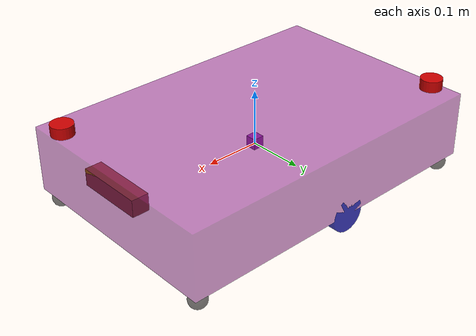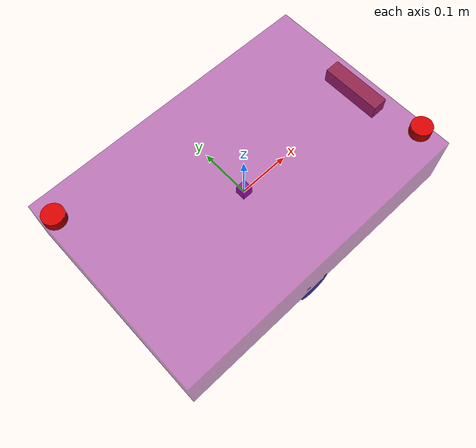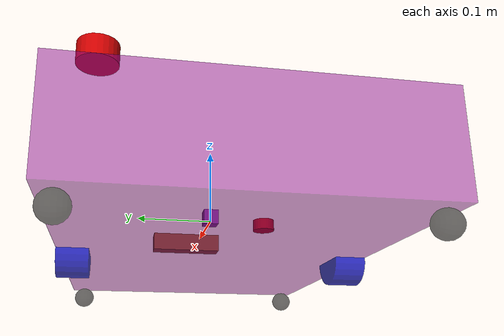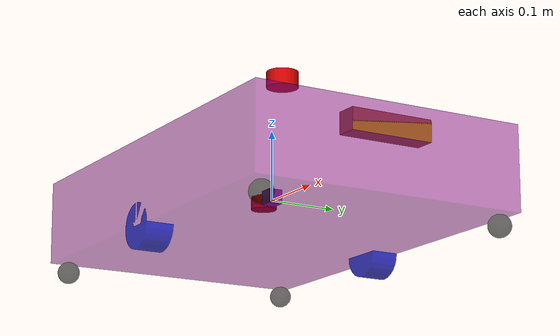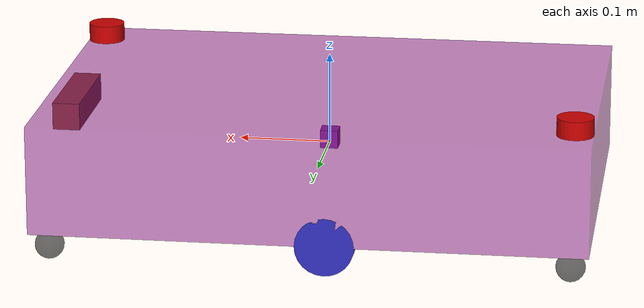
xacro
<?xml version="1.0"?>
<robot name="jzDiffRobot"
    xmlns:xacro="http://ros.org/wiki/xacro">

    <!--
    差速底盘 XACRO 总入口
    用法：
        仿真： ros2 launch ... robot.xacro use_sim_time:=true
        真机： ros2 launch ... robot.xacro use_sim_time:=false
    -->

    <!-- 切换参数：true 为仿真，false 为真机，可通过 launch 传入 -->
    <xacro:arg name="use_sim_time" default="true" />

    <!-- 载入核心结构（常量、底盘、轮子） -->
    <xacro:include filename="common_properties.xacro" />
    <xacro:include filename="diff_base.xacro" />
    <xacro:include filename="diff_wheels.xacro" />

    <!-- 根据 use_sim_time 选择不同的组件 -->
    <xacro:if value="$(arg use_sim_time)">
        <!-- 仿真：加载 Gazebo 摩擦、传感器、仿真控制器 -->
        <xacro:include filename="gazebo_wheels.xacro" />
        <xacro:include filename="sensors_gazebo.xacro" />
        <xacro:include filename="ros2_control_sim.xacro" />
    </xacro:if>

    <xacro:unless value="$(arg use_sim_time)">
        <!-- 真机：只加载真实硬件控制器 -->
        <xacro:include filename="ros2_control_real.xacro" />
    </xacro:unless>

</robot>

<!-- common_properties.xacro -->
<robot xmlns:xacro="http://ros.org/wiki/xacro">

    <!-- 数学常量 -->
    <xacro:property name="M_PI" value="3.1415926535897931" />
    <xacro:property name="PI_2" value="1.570796327" />

    <!-- 底盘尺寸 -->
    <xacro:property name="base_box_x" value="0.6" />
    <xacro:property name="base_box_y" value="0.4" />
    <xacro:property name="base_box_z" value="0.12" />
    <xacro:property name="base_mass" value="0.2" />
    <xacro:property name="base_offset_z" value="0.005" />

    <!-- 轮子参数 -->
    <xacro:property name="wheel_radius" value="0.032" />
    <xacro:property name="wheel_width" value="0.04" />
    <xacro:property name="wheel_mass" value="0.2" />

    <!-- 轮子位置 (相对于 base_link) -->
    <xacro:property name="wheel_x" value="-0.02" />
    <xacro:property name="wheel_y" value="0.18" />
    <xacro:property name="wheel_z" value="-0.06" />

    <!-- 差速插件运动学参数 -->
    <xacro:property name="wheel_separation" value="0.36" />
    <xacro:property name="wheel_diameter" value="0.065" />

    <!-- 脚轮参数 -->
    <xacro:property name="caster_radius" value="0.016" />
    <xacro:property name="caster_mass" value="0.02" />

    <!-- 颜色定义 -->
    <material name="purple">
        <color rgba="0.5 0.0 0.5 0.5" />
    </material>
    <material name="dark_red">
        <color rgba="0.8 0.0 0.0 1.0" />
    </material>
    <material name="blue">
        <color rgba="0.0 0.0 0.7 0.8" />
    </material>
    <material name="black">
        <color rgba="0.0 0.0 0.0 0.6" />
    </material>
    <material name="brown">
        <color rgba="0.6 0.3 0.1 1.0" />
    </material>

    <!-- 惯性宏 -->
    <xacro:macro name="box_inertia" params="m x y z">
        <inertia ixx="${m*(y*y+z*z)/12}" ixy="0" ixz="0"
            iyy="${m*(x*x+z*z)/12}" iyz="0"
            izz="${m*(x*x+y*y)/12}" />
    </xacro:macro>

    <xacro:macro name="cylinder_inertia" params="m r l">
        <inertia ixx="${m*(3*r*r+l*l)/12}" ixy="0" ixz="0"
            iyy="${m*(3*r*r+l*l)/12}" iyz="0"
            izz="${m*r*r/2}" />
    </xacro:macro>

    <xacro:macro name="sphere_inertia" params="m r">
        <inertia ixx="${0.4*m*r*r}" ixy="0" ixz="0"
            iyy="${0.4*m*r*r}" iyz="0"
            izz="${0.4*m*r*r}" />
    </xacro:macro>

</robot>

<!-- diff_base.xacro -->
<robot xmlns:xacro="http://ros.org/wiki/xacro">

    <!-- base_footprint -->
    <link name="base_footprint" />

    <joint name="base_joint" type="fixed">
        <parent link="base_footprint" />
        <child link="base_link" />
        <origin xyz="0 0 ${base_offset_z}" rpy="0 0 0" />
    </joint>

    <!-- base_link -->
    <link name="base_link">
        <visual>
            <origin xyz="0 0 0" rpy="0 0 0" />
            <geometry>
                <box size="${base_box_x} ${base_box_y} ${base_box_z}" />
            </geometry>
            <material name="purple" />
        </visual>
        <collision>
            <origin xyz="0 0 0" rpy="0 0 0" />
            <geometry>
                <box size="${base_box_x} ${base_box_y} ${base_box_z}" />
            </geometry>
        </collision>
        <inertial>
            <mass value="${base_mass}" />
            <xacro:box_inertia m="${base_mass}" x="${base_box_x}" y="${base_box_y}" z="${base_box_z}" />
        </inertial>
    </link>

    <gazebo reference="base_link">
        <material>Gazebo/Orange</material>
    </gazebo>

    <!-- ==================== 前向雷达 ==================== -->
    <link name="laser_front_link">
        <visual>
            <origin xyz="0 0 0" rpy="0 0 0" />
            <geometry>
                <cylinder length="0.02" radius="0.02" />
            </geometry>
            <material name="dark_red" />
        </visual>
        <collision>
            <origin xyz="0 0 0" rpy="0 0 0" />
            <geometry>
                <cylinder length="0.002" radius="0.002" />
            </geometry>
        </collision>
        <inertial>
            <mass value="0.1" />
            <xacro:cylinder_inertia m="0.1" r="0.02" l="0.02" />
        </inertial>
    </link>

    <joint name="laser_front_joint" type="fixed">
        <parent link="base_link" />
        <child link="laser_front_link" />
        <origin xyz="0.28 -0.15 0.07" rpy="0 0 -0.785398" />
    </joint>

    <!-- ==================== 后向雷达 ==================== -->
    <link name="laser_rear_link">
        <visual>
            <origin xyz="0 0 0" rpy="0 0 0" />
            <geometry>
                <cylinder length="0.02" radius="0.02" />
            </geometry>
            <material name="dark_red" />
        </visual>
        <collision>
            <origin xyz="0 0 0" rpy="0 0 0" />
            <geometry>
                <cylinder length="0.002" radius="0.002" />
            </geometry>
        </collision>
        <inertial>
            <mass value="0.1" />
            <xacro:cylinder_inertia m="0.1" r="0.02" l="0.02" />
        </inertial>
    </link>

    <joint name="laser_rear_joint" type="fixed">
        <parent link="base_link" />
        <child link="laser_rear_link" />
        <origin xyz="-0.28 0.15 0.07" rpy="0 0 2.35619" />
    </joint>

    <!-- ==================== IMU ==================== -->
    <link name="imu_link">
        <visual>
            <origin xyz="0 0 0" rpy="0 0 0" />
            <geometry>
                <box size="0.02 0.02 0.02" />
            </geometry>
        </visual>
        <collision>
            <origin xyz="0 0 0" rpy="0 0 0" />
            <geometry>
                <box size="0.02 0.02 0.02" />
            </geometry>
        </collision>
        <inertial>
            <mass value="0.1" />
            <xacro:box_inertia m="0.1" x="0.02" y="0.02" z="0.02" />
        </inertial>
    </link>

    <joint name="imu_joint" type="fixed">
        <origin xyz="0 0 0" rpy="0 0 0" />
        <parent link="base_link" />
        <child link="imu_link" />
    </joint>

    <!-- ==================== 相机 ==================== -->
    <link name="camera_link">
        <visual>
            <origin xyz="0 0 0" rpy="0 0 0" />
            <geometry>
                <box size="0.03 0.12 0.03" />
            </geometry>
            <material name="brown" />
        </visual>
        <collision>
            <origin xyz="0 0 0" rpy="0 0 0" />
            <geometry>
                <box size="0.03 0.12 0.03" />
            </geometry>
        </collision>
        <inertial>
            <mass value="0.05" />
            <xacro:box_inertia m="0.05" x="0.03" y="0.12" z="0.03" />
        </inertial>
    </link>

    <link name="camera_optical_link" />

    <joint name="camera_joint" type="fixed">
        <parent link="base_link" />
        <child link="camera_link" />
        <origin xyz="0.285 0 0.03" rpy="0 0 0" />
    </joint>

    <joint name="camera_optical_joint" type="fixed">
        <parent link="camera_link" />
        <child link="camera_optical_link" />
        <origin xyz="0.015 0 0" rpy="-1.570796 0 -1.570796" />
    </joint>

</robot>

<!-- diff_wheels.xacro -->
<robot xmlns:xacro="http://ros.org/wiki/xacro">

    <!-- ==================== 左轮 ==================== -->
    <link name="left_wheel_link">
        <visual>
            <origin xyz="0 0 0" rpy="${PI_2} 0 0" />
            <geometry>
                <cylinder length="${wheel_width}" radius="${wheel_radius}" />
            </geometry>
            <material name="blue" />
        </visual>
        <collision>
            <origin xyz="0 0 0" rpy="${PI_2} 0 0" />
            <geometry>
                <cylinder length="${wheel_width}" radius="${wheel_radius}" />
            </geometry>
        </collision>
        <inertial>
            <mass value="${wheel_mass}" />
            <xacro:cylinder_inertia m="${wheel_mass}" r="${wheel_radius}" l="${wheel_width}" />
        </inertial>
    </link>

    <joint name="left_wheel_joint" type="continuous">
        <parent link="base_link" />
        <child link="left_wheel_link" />
        <origin xyz="${wheel_x} ${wheel_y} ${wheel_z}" />
        <axis xyz="0 1 0" />
    </joint>

    <!-- ==================== 右轮 ==================== -->
    <link name="right_wheel_link">
        <visual>
            <origin xyz="0 0 0" rpy="${PI_2} 0 0" />
            <geometry>
                <cylinder length="${wheel_width}" radius="${wheel_radius}" />
            </geometry>
            <material name="blue" />
        </visual>
        <collision>
            <origin xyz="0 0 0" rpy="${PI_2} 0 0" />
            <geometry>
                <cylinder length="${wheel_width}" radius="${wheel_radius}" />
            </geometry>
        </collision>
        <inertial>
            <mass value="${wheel_mass}" />
            <xacro:cylinder_inertia m="${wheel_mass}" r="${wheel_radius}" l="${wheel_width}" />
        </inertial>
    </link>

    <joint name="right_wheel_joint" type="continuous">
        <parent link="base_link" />
        <child link="right_wheel_link" />
        <origin xyz="${wheel_x} ${-wheel_y} ${wheel_z}" />
        <axis xyz="0 1 0" />
    </joint>

    <!-- ==================== 脚轮宏 ==================== -->
    <xacro:macro name="caster_wheel" params="prefix x y z">
        <link name="${prefix}_link">
            <visual>
                <origin xyz="0 0 0" rpy="${PI_2} 0 0" />
                <geometry>
                    <sphere radius="${caster_radius}" />
                </geometry>
                <material name="black" />
            </visual>
            <collision>
                <origin xyz="0 0 0" rpy="${PI_2} 0 0" />
                <geometry>
                    <sphere radius="${caster_radius}" />
                </geometry>
            </collision>
            <inertial>
                <mass value="${caster_mass}" />
                <xacro:sphere_inertia m="${caster_mass}" r="${caster_radius}" />
            </inertial>
        </link>

        <joint name="${prefix}_joint" type="fixed">
            <parent link="base_link" />
            <child link="${prefix}_link" />
            <origin xyz="${x} ${y} ${z}" />
        </joint>
    </xacro:macro>

    <!-- 四个脚轮 -->
    <xacro:caster_wheel prefix="caster_front_right" x="0.28" y="0.18" z="-0.076" />
    <xacro:caster_wheel prefix="caster_front_left"  x="0.28" y="-0.18" z="-0.076" />
    <xacro:caster_wheel prefix="caster_rear_right"  x="-0.28" y="0.18" z="-0.076" />
    <xacro:caster_wheel prefix="caster_rear_left"   x="-0.28" y="-0.18" z="-0.076" />

</robot>
